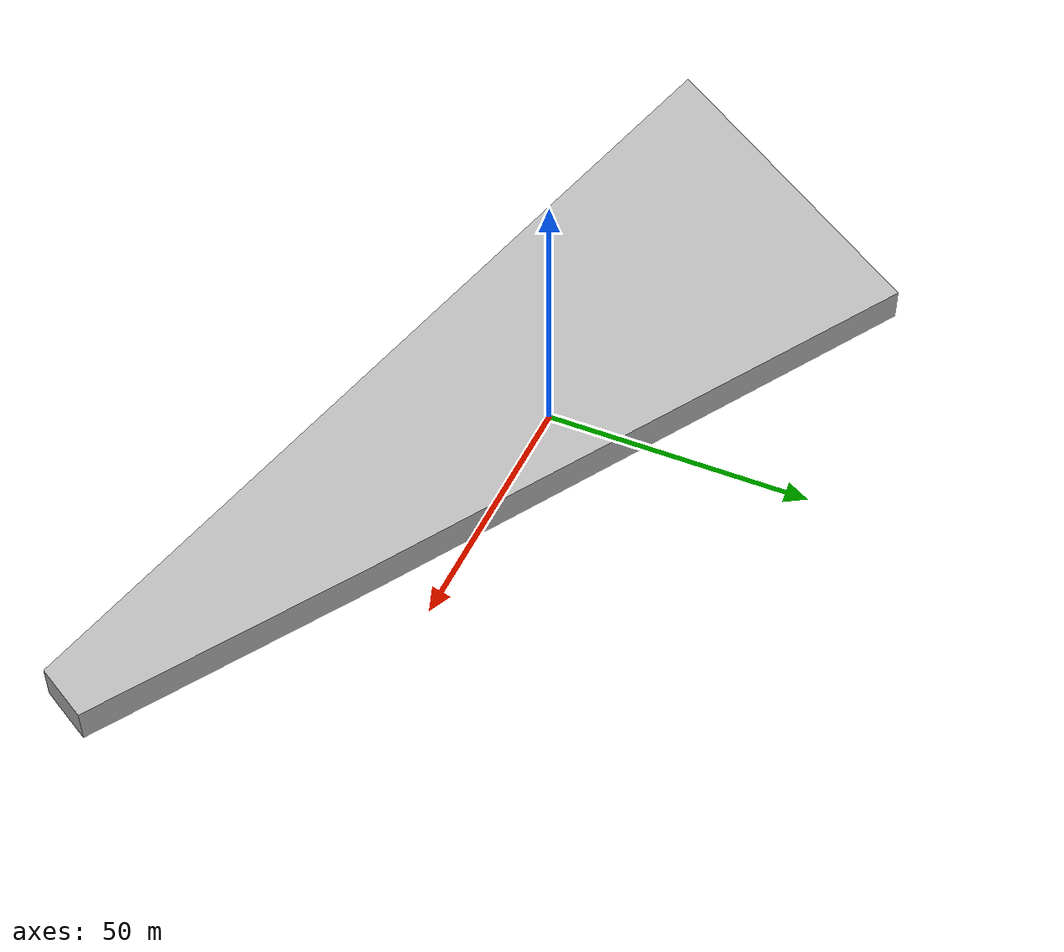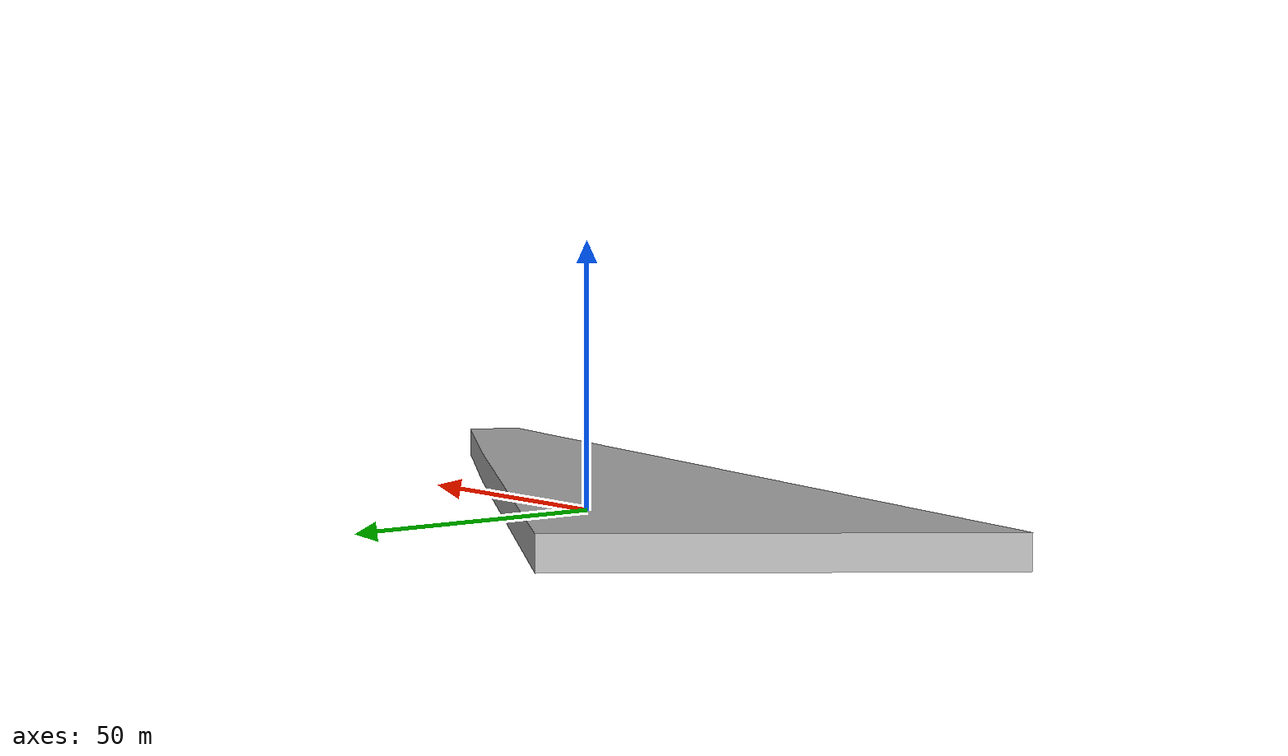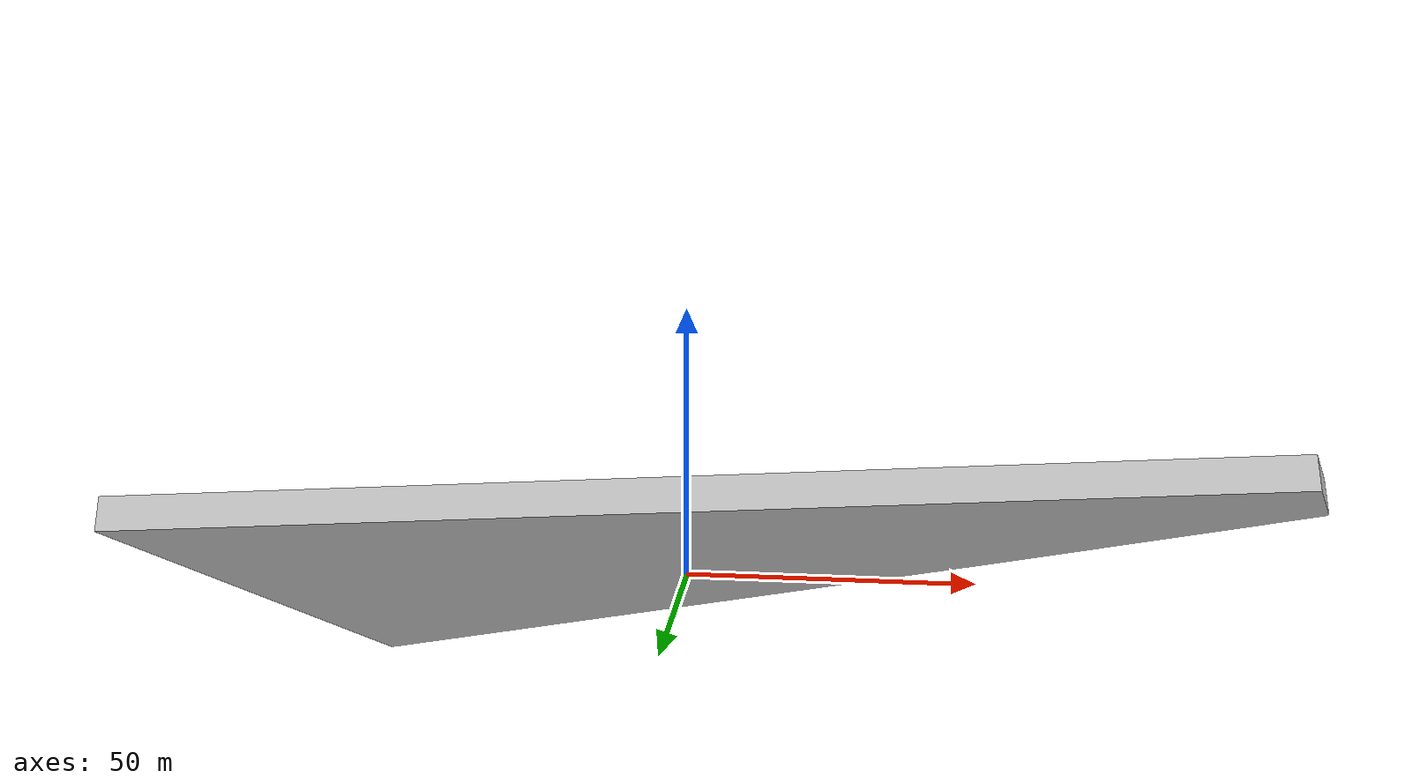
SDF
<?xml version="1.0" ?>
<sdf version="1.7">
  <model name="building_0055_assumed_a_central_electrica">
    <static>true</static>
    <link name="building_link">
      <visual name="building_visual">
        <geometry>
          <mesh>
            <uri>model://building_0055_assumed_a_central_electrica/meshes/construction_0055_assumed_A_Central_electrica_h6m.obj</uri>
          </mesh>
        </geometry>
      </visual>
    <collision name="building_collision">
      <geometry>
        <mesh>
          <uri>model://building_0055_assumed_a_central_electrica/meshes/construction_0055_assumed_A_Central_electrica_h6m.obj</uri>
        </mesh>
      </geometry>
    </collision>
    </link>
  </model>
</sdf>
